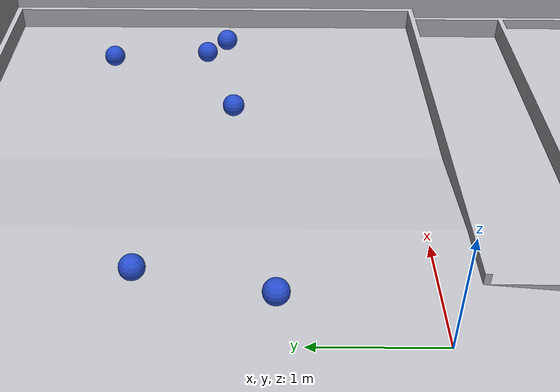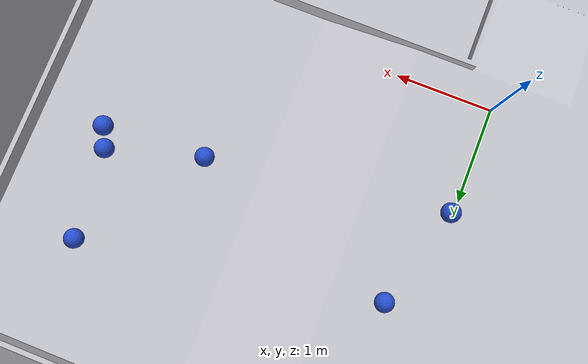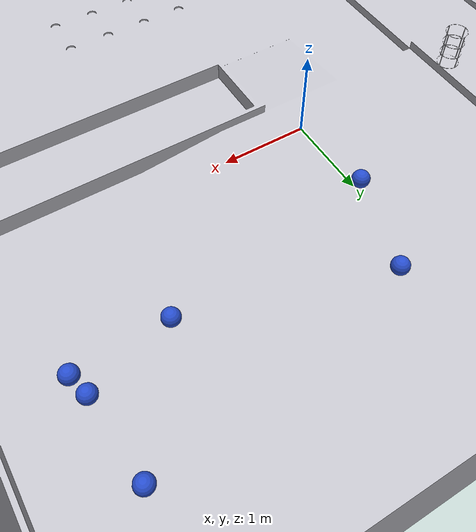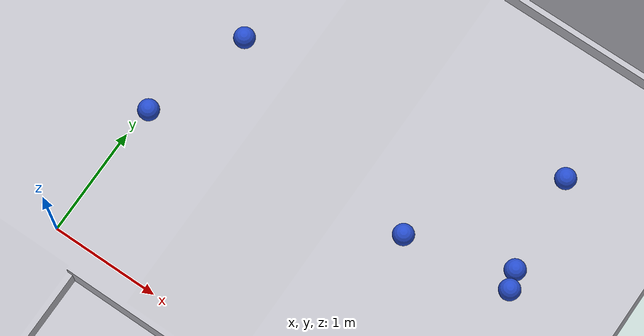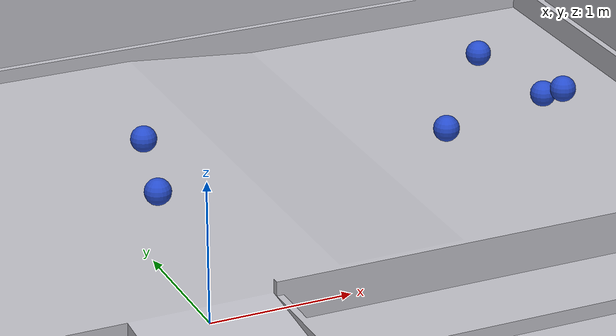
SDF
<sdf version="1.7">
 <world name="default">
  <light name="sun" type="directional">
   <pose>0 0 10 0 -0 0</pose>
   <diffuse>0.8 0.8 0.8 1</diffuse>
   <specular>0.2 0.2 0.2 1</specular>
   <attenuation>
    <range>1000</range>
    <constant>0.9</constant>
    <linear>0.01</linear>
    <quadratic>0.001</quadratic>
   </attenuation>
   <direction>-0.5 0.1 -0.9</direction>
   <spot><inner_angle>0</inner_angle><outer_angle>0</outer_angle><falloff>0</falloff></spot>
  </light>
  <model name="ground_plane">
   <static>1</static>
   <link name="link">
    <collision name="collision">
     <geometry><plane><normal>0 0 1</normal><size>100 100</size></plane></geometry>
     <surface><friction><ode><mu>100</mu><mu2>50</mu2></ode></friction></surface>
    </collision>
    <visual name="visual">
     <cast_shadows>0</cast_shadows>
     <geometry><plane><normal>0 0 1</normal><size>100 100</size></plane></geometry>
     <material>
      <script><uri>file://media/materials/scripts/gazebo.material</uri><name>Gazebo/Grey</name></script>
     </material>
    </visual>
   </link>
  </model>
  <gravity>0 0 -9.8</gravity>
  <magnetic_field>6e-06 2.3e-05 -4.2e-05</magnetic_field>
  <atmosphere type="adiabatic"/>
  <physics type="ode">
   <max_step_size>0.001</max_step_size>
   <real_time_factor>1</real_time_factor>
   <real_time_update_rate>1000</real_time_update_rate>
  </physics>
  <scene><ambient>0.4 0.4 0.4 1</ambient><background>0.7 0.7 0.7 1</background><shadows>1</shadows></scene>
  <audio><device>default</device></audio>
  <spherical_coordinates>
   <surface_model>EARTH_WGS84</surface_model>
   <latitude_deg>0</latitude_deg>
   <longitude_deg>0</longitude_deg>
   <elevation>0</elevation>
   <heading_deg>0</heading_deg>
  </spherical_coordinates>
  <model name="arena_urdf">
   <link name="base_link">
    <inertial>
     <pose>0 0.646208 0.101866 0 -0 0</pose>
     <mass>117918</mass>
     <inertia>
      <ixx>1.19196e+06</ixx>
      <ixy>-4e-06</ixy>
      <ixz>0</ixz>
      <iyy>1.26446e+06</iyy>
      <iyz>-17617.7</iyz>
      <izz>2.45524e+06</izz>
     </inertia>
    </inertial>
    <collision name="base_link_collision">
     <geometry><mesh><scale>0.001 0.001 0.001</scale><uri>walledArena.stl</uri></mesh></geometry>
     <surface><friction><ode><mu>0.2</mu><mu2>0.2</mu2></ode></friction></surface>
    </collision>
    <visual name="base_link_visual">
     <geometry><mesh><scale>0.001 0.001 0.001</scale><uri>walledArena.stl</uri></mesh></geometry>
     <material>
      <script><name>Gazebo/Silver</name><uri>file://media/materials/scripts/gazebo.material</uri></script>
     </material>
    </visual>
    <self_collide>1</self_collide>
   </link>
   <static>0</static>
   <plugin name="control" filename="libgazebo_ros_control.so"/>
   <pose>-1.84834 -2.23111 -0 0 -0 0</pose>
  </model>
  <model name="blue_ball_clone">
   <link name="link">
    <inertial>
     <mass>0.3</mass>
     <inertia>
      <ixx>0.0029749</ixx>
      <ixy>0</ixy>
      <ixz>0</ixz>
      <iyy>0.0029749</iyy>
      <iyz>0</iyz>
      <izz>0.0029749</izz>
     </inertia>
    </inertial>
    <visual name="visual">
     <geometry><sphere><radius>0.095</radius></sphere></geometry>
     <material>
      <script><name>Gazebo/Blue</name><uri>file://media/materials/scripts/gazebo.material</uri></script>
      <shader type="pixel"><normal_map>__default__</normal_map></shader>
      <ambient>0.071 0.31 0.988 1</ambient>
      <diffuse>0.7 0.7 0.7 1</diffuse>
      <specular>0.01 0.01 0.01 1</specular>
      <emissive>0 0 0 1</emissive>
     </material>
    </visual>
    <collision name="collision">
     <geometry><sphere><radius>0.095</radius></sphere></geometry>
     <surface>
      <friction>
       <ode><mu>1</mu><mu2>1</mu2><fdir1>0 0 0</fdir1><slip1>0</slip1><slip2>0</slip2></ode>
       <torsional>
        <coefficient>1</coefficient>
        <patch_radius>0</patch_radius>
        <surface_radius>0</surface_radius>
        <use_patch_radius>1</use_patch_radius>
        <ode><slip>0</slip></ode>
       </torsional>
      </friction>
      <bounce><restitution_coefficient>0</restitution_coefficient><threshold>1e+06</threshold></bounce>
      <contact>
       <collide_without_contact>0</collide_without_contact>
       <collide_without_contact_bitmask>1</collide_without_contact_bitmask>
       <collide_bitmask>1</collide_bitmask>
       <ode>
        <soft_cfm>0</soft_cfm>
        <soft_erp>0.2</soft_erp>
        <kp>1e+13</kp>
        <kd>1</kd>
        <max_vel>0.01</max_vel>
        <min_depth>0</min_depth>
       </ode>
       <bullet>
        <split_impulse>1</split_impulse>
        <split_impulse_penetration_threshold>-0.01</split_impulse_penetration_threshold>
        <soft_cfm>0</soft_cfm>
        <soft_erp>0.2</soft_erp>
        <kp>1e+13</kp>
        <kd>1</kd>
       </bullet>
      </contact>
     </surface>
    </collision>
   </link>
   <static>0</static>
   <pose>0.401551 2.18218 0.344504 -4.1e-05 0.000257 0</pose>
  </model>
  <model name="blue_ball">
   <link name="link">
    <inertial>
     <mass>0.3</mass>
     <inertia>
      <ixx>0.0029749</ixx>
      <ixy>0</ixy>
      <ixz>0</ixz>
      <iyy>0.0029749</iyy>
      <iyz>0</iyz>
      <izz>0.0029749</izz>
     </inertia>
    </inertial>
    <visual name="visual">
     <geometry><sphere><radius>0.095</radius></sphere></geometry>
     <material>
      <script><name>Gazebo/Blue</name><uri>file://media/materials/scripts/gazebo.material</uri></script>
      <shader type="pixel"><normal_map>__default__</normal_map></shader>
      <ambient>0.071 0.31 0.988 1</ambient>
      <diffuse>0.7 0.7 0.7 1</diffuse>
      <specular>0.01 0.01 0.01 1</specular>
      <emissive>0 0 0 1</emissive>
     </material>
    </visual>
    <collision name="collision">
     <geometry><sphere><radius>0.095</radius></sphere></geometry>
     <surface>
      <friction>
       <ode><mu>1</mu><mu2>1</mu2><fdir1>0 0 0</fdir1><slip1>0</slip1><slip2>0</slip2></ode>
       <torsional>
        <coefficient>1</coefficient>
        <patch_radius>0</patch_radius>
        <surface_radius>0</surface_radius>
        <use_patch_radius>1</use_patch_radius>
        <ode><slip>0</slip></ode>
       </torsional>
      </friction>
      <bounce><restitution_coefficient>0</restitution_coefficient><threshold>1e+06</threshold></bounce>
      <contact>
       <collide_without_contact>0</collide_without_contact>
       <collide_without_contact_bitmask>1</collide_without_contact_bitmask>
       <collide_bitmask>1</collide_bitmask>
       <ode>
        <soft_cfm>0</soft_cfm>
        <soft_erp>0.2</soft_erp>
        <kp>1e+13</kp>
        <kd>1</kd>
        <max_vel>0.01</max_vel>
        <min_depth>0</min_depth>
       </ode>
       <bullet>
        <split_impulse>1</split_impulse>
        <split_impulse_penetration_threshold>-0.01</split_impulse_penetration_threshold>
        <soft_cfm>0</soft_cfm>
        <soft_erp>0.2</soft_erp>
        <kp>1e+13</kp>
        <kd>1</kd>
       </bullet>
      </contact>
     </surface>
    </collision>
   </link>
   <static>0</static>
   <pose>0.122627 1.19532 0.406954 1.1e-05 4e-06 0</pose>
  </model>
  <model name="blue_ball_clone_0">
   <link name="link">
    <inertial>
     <mass>2</mass>
     <inertia><ixx>0.00722</ixx><ixy>0</ixy><ixz>0</ixz><iyy>0.00722</iyy><iyz>0</iyz><izz>0.00722</izz></inertia>
    </inertial>
    <visual name="visual">
     <geometry><sphere><radius>0.095</radius></sphere></geometry>
     <material>
      <script><name>Gazebo/Blue</name><uri>file://media/materials/scripts/gazebo.material</uri></script>
      <shader type="pixel"><normal_map>__default__</normal_map></shader>
      <ambient>0.071 0.31 0.988 1</ambient>
      <diffuse>0.7 0.7 0.7 1</diffuse>
      <specular>0.01 0.01 0.01 1</specular>
      <emissive>0 0 0 1</emissive>
     </material>
    </visual>
    <collision name="collision">
     <geometry><sphere><radius>0.095</radius></sphere></geometry>
     <surface>
      <friction>
       <ode><mu>1</mu><mu2>1</mu2><fdir1>0 0 0</fdir1><slip1>0</slip1><slip2>0</slip2></ode>
       <torsional>
        <coefficient>1</coefficient>
        <patch_radius>0</patch_radius>
        <surface_radius>0</surface_radius>
        <use_patch_radius>1</use_patch_radius>
        <ode><slip>0</slip></ode>
       </torsional>
      </friction>
      <bounce><restitution_coefficient>0</restitution_coefficient><threshold>1e+06</threshold></bounce>
      <contact>
       <collide_without_contact>0</collide_without_contact>
       <collide_without_contact_bitmask>1</collide_without_contact_bitmask>
       <collide_bitmask>1</collide_bitmask>
       <ode>
        <soft_cfm>0</soft_cfm>
        <soft_erp>0.2</soft_erp>
        <kp>1e+13</kp>
        <kd>1</kd>
        <max_vel>0.01</max_vel>
        <min_depth>0</min_depth>
       </ode>
       <bullet>
        <split_impulse>1</split_impulse>
        <split_impulse_penetration_threshold>-0.01</split_impulse_penetration_threshold>
        <soft_cfm>0</soft_cfm>
        <soft_erp>0.2</soft_erp>
        <kp>1e+13</kp>
        <kd>1</kd>
       </bullet>
      </contact>
     </surface>
    </collision>
   </link>
   <static>0</static>
   <pose>3.43299 1.6154 0.406954 -6e-05 5e-05 0</pose>
  </model>
  <model name="purple_ball_clone">
   <link name="link">
    <inertial>
     <mass>2</mass>
     <inertia><ixx>0.00722</ixx><ixy>0</ixy><ixz>0</ixz><iyy>0.00722</iyy><iyz>0</iyz><izz>0.00722</izz></inertia>
    </inertial>
    <visual name="visual">
     <geometry><sphere><radius>0.095</radius></sphere></geometry>
     <material>
      <script><name>Gazebo/Blue</name><uri>file://media/materials/scripts/gazebo.material</uri></script>
      <shader type="pixel"><normal_map>__default__</normal_map></shader>
      <ambient>0.584 0.239 0.863 1</ambient>
      <diffuse>0.7 0.7 0.7 1</diffuse>
      <specular>0.01 0.01 0.01 1</specular>
      <emissive>0 0 0 1</emissive>
     </material>
    </visual>
    <collision name="collision">
     <geometry><sphere><radius>0.095</radius></sphere></geometry>
     <surface>
      <friction>
       <ode><mu>1</mu><mu2>1</mu2><fdir1>0 0 0</fdir1><slip1>0</slip1><slip2>0</slip2></ode>
       <torsional>
        <coefficient>1</coefficient>
        <patch_radius>0</patch_radius>
        <surface_radius>0</surface_radius>
        <use_patch_radius>1</use_patch_radius>
        <ode><slip>0</slip></ode>
       </torsional>
      </friction>
      <bounce><restitution_coefficient>0</restitution_coefficient><threshold>1e+06</threshold></bounce>
      <contact>
       <collide_without_contact>0</collide_without_contact>
       <collide_without_contact_bitmask>1</collide_without_contact_bitmask>
       <collide_bitmask>1</collide_bitmask>
       <ode>
        <soft_cfm>0</soft_cfm>
        <soft_erp>0.2</soft_erp>
        <kp>1e+13</kp>
        <kd>1</kd>
        <max_vel>0.01</max_vel>
        <min_depth>0</min_depth>
       </ode>
       <bullet>
        <split_impulse>1</split_impulse>
        <split_impulse_penetration_threshold>-0.01</split_impulse_penetration_threshold>
        <soft_cfm>0</soft_cfm>
        <soft_erp>0.2</soft_erp>
        <kp>1e+13</kp>
        <kd>1</kd>
       </bullet>
      </contact>
     </surface>
    </collision>
   </link>
   <static>0</static>
   <pose>3.29256 2.69024 0.307451 5e-06 2.1e-05 -0</pose>
  </model>
  <model name="purple_ball_clone_0">
   <link name="link">
    <inertial>
     <mass>2</mass>
     <inertia><ixx>0.00722</ixx><ixy>0</ixy><ixz>0</ixz><iyy>0.00722</iyy><iyz>0</iyz><izz>0.00722</izz></inertia>
    </inertial>
    <visual name="visual">
     <geometry><sphere><radius>0.095</radius></sphere></geometry>
     <material>
      <script><name>Gazebo/Blue</name><uri>file://media/materials/scripts/gazebo.material</uri></script>
      <shader type="pixel"><normal_map>__default__</normal_map></shader>
      <ambient>0.584 0.239 0.863 1</ambient>
      <diffuse>0.7 0.7 0.7 1</diffuse>
      <specular>0.01 0.01 0.01 1</specular>
      <emissive>0 0 0 1</emissive>
     </material>
    </visual>
    <collision name="collision">
     <geometry><sphere><radius>0.095</radius></sphere></geometry>
     <surface>
      <friction>
       <ode><mu>1</mu><mu2>1</mu2><fdir1>0 0 0</fdir1><slip1>0</slip1><slip2>0</slip2></ode>
       <torsional>
        <coefficient>1</coefficient>
        <patch_radius>0</patch_radius>
        <surface_radius>0</surface_radius>
        <use_patch_radius>1</use_patch_radius>
        <ode><slip>0</slip></ode>
       </torsional>
      </friction>
      <bounce><restitution_coefficient>0</restitution_coefficient><threshold>1e+06</threshold></bounce>
      <contact>
       <collide_without_contact>0</collide_without_contact>
       <collide_without_contact_bitmask>1</collide_without_contact_bitmask>
       <collide_bitmask>1</collide_bitmask>
       <ode>
        <soft_cfm>0</soft_cfm>
        <soft_erp>0.2</soft_erp>
        <kp>1e+13</kp>
        <kd>1</kd>
        <max_vel>0.01</max_vel>
        <min_depth>0</min_depth>
       </ode>
       <bullet>
        <split_impulse>1</split_impulse>
        <split_impulse_penetration_threshold>-0.01</split_impulse_penetration_threshold>
        <soft_cfm>0</soft_cfm>
        <soft_erp>0.2</soft_erp>
        <kp>1e+13</kp>
        <kd>1</kd>
       </bullet>
      </contact>
     </surface>
    </collision>
   </link>
   <static>0</static>
   <pose>3.3732 1.80317 0.307451 5e-06 2.1e-05 -0</pose>
  </model>
  <model name="purple_ball">
   <link name="link">
    <inertial>
     <mass>2</mass>
     <inertia><ixx>0.00722</ixx><ixy>0</ixy><ixz>0</ixz><iyy>0.00722</iyy><iyz>0</iyz><izz>0.00722</izz></inertia>
    </inertial>
    <visual name="visual">
     <geometry><sphere><radius>0.095</radius></sphere></geometry>
     <material>
      <script><name>Gazebo/Blue</name><uri>file://media/materials/scripts/gazebo.material</uri></script>
      <shader type="pixel"><normal_map>__default__</normal_map></shader>
      <ambient>0.584 0.239 0.863 1</ambient>
      <diffuse>0.7 0.7 0.7 1</diffuse>
      <specular>0.01 0.01 0.01 1</specular>
      <emissive>0 0 0 1</emissive>
     </material>
    </visual>
    <collision name="collision">
     <geometry><sphere><radius>0.095</radius></sphere></geometry>
     <surface>
      <friction>
       <ode><mu>1</mu><mu2>1</mu2><fdir1>0 0 0</fdir1><slip1>0</slip1><slip2>0</slip2></ode>
       <torsional>
        <coefficient>1</coefficient>
        <patch_radius>0</patch_radius>
        <surface_radius>0</surface_radius>
        <use_patch_radius>1</use_patch_radius>
        <ode><slip>0</slip></ode>
       </torsional>
      </friction>
      <bounce><restitution_coefficient>0</restitution_coefficient><threshold>1e+06</threshold></bounce>
      <contact>
       <collide_without_contact>0</collide_without_contact>
       <collide_without_contact_bitmask>1</collide_without_contact_bitmask>
       <collide_bitmask>1</collide_bitmask>
       <ode>
        <soft_cfm>0</soft_cfm>
        <soft_erp>0.2</soft_erp>
        <kp>1e+13</kp>
        <kd>1</kd>
        <max_vel>0.01</max_vel>
        <min_depth>0</min_depth>
       </ode>
       <bullet>
        <split_impulse>1</split_impulse>
        <split_impulse_penetration_threshold>-0.01</split_impulse_penetration_threshold>
        <soft_cfm>0</soft_cfm>
        <soft_erp>0.2</soft_erp>
        <kp>1e+13</kp>
        <kd>1</kd>
       </bullet>
      </contact>
     </surface>
    </collision>
   </link>
   <static>0</static>
   <pose>2.45325 1.53192 0.307451 5e-06 2.1e-05 -0</pose>
  </model>
 </world>
</sdf>
